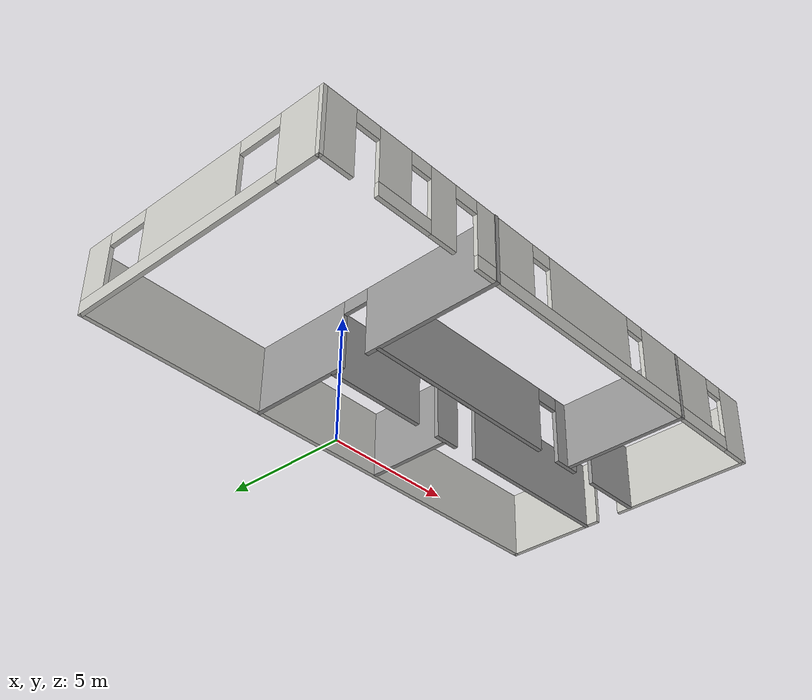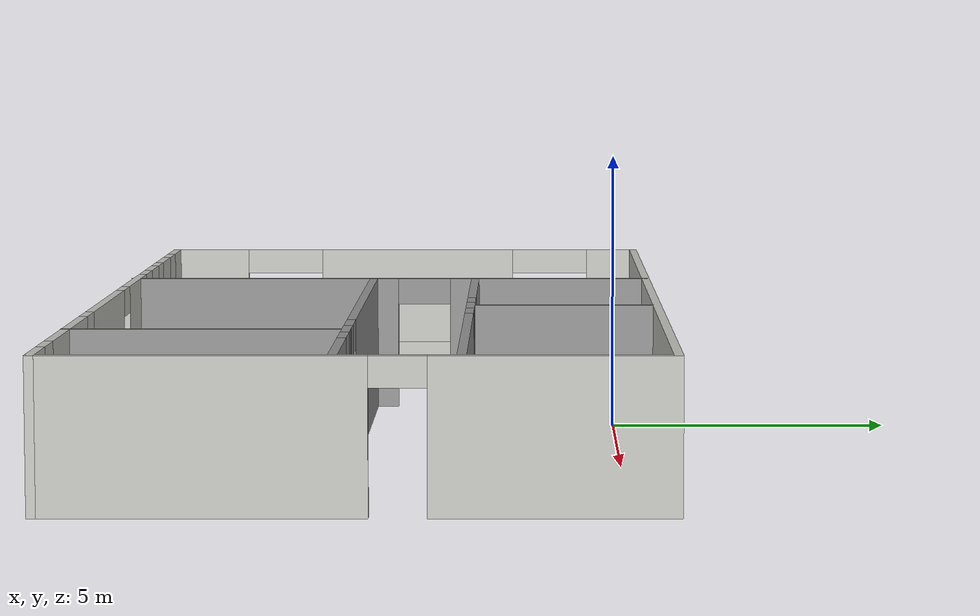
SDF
<?xml version='1.0'?>
<sdf version='1.6'>
  <model name='Building'>
    <pose frame=''>0.241677 -4.22597 0 0 -0 0</pose>
    <link name='Wall_0'>
      <pose frame=''>-9.925 0.012573 0 0 -0 1.5708</pose>
      <visual name='Wall_0_Visual_0'>
        <pose frame=''>-4.19143 0 1.25 0 -0 0</pose>
        <geometry>
          <box>
            <size>1.61715 0.15 2.5</size>
          </box>
        </geometry>
        <material>
          <script>
            <uri>file://media/materials/scripts/gazebo.material</uri>
            <name>Gazebo/CeilingTiled</name>
          </script>
          <ambient>1 1 1 1</ambient>
        </material>
        <meta>
          <layer>0</layer>
        </meta>
      </visual>
      <collision name='Wall_0_Collision_0'>
        <geometry>
          <box>
            <size>1.61715 0.15 2.5</size>
          </box>
        </geometry>
        <pose frame=''>-4.19143 0 1.25 0 -0 0</pose>
      </collision>
      <visual name='Wall_0_Visual_1'>
        <pose frame=''>0.808574 0 0.25 0 -0 0</pose>
        <geometry>
          <box>
            <size>8.38285 0.15 0.5</size>
          </box>
        </geometry>
        <material>
          <script>
            <uri>file://media/materials/scripts/gazebo.material</uri>
            <name>Gazebo/CeilingTiled</name>
          </script>
          <ambient>1 1 1 1</ambient>
        </material>
        <meta>
          <layer>0</layer>
        </meta>
      </visual>
      <collision name='Wall_0_Collision_1'>
        <geometry>
          <box>
            <size>8.38285 0.15 0.5</size>
          </box>
        </geometry>
        <pose frame=''>0.808574 0 0.25 0 -0 0</pose>
      </collision>
      <visual name='Wall_0_Visual_2'>
        <pose frame=''>0.268788 0 1.5 0 -0 0</pose>
        <geometry>
          <box>
            <size>4.10328 0.15 2</size>
          </box>
        </geometry>
        <material>
          <script>
            <uri>file://media/materials/scripts/gazebo.material</uri>
            <name>Gazebo/CeilingTiled</name>
          </script>
          <ambient>1 1 1 1</ambient>
        </material>
        <meta>
          <layer>0</layer>
        </meta>
      </visual>
      <collision name='Wall_0_Collision_2'>
        <geometry>
          <box>
            <size>4.10328 0.15 2</size>
          </box>
        </geometry>
        <pose frame=''>0.268788 0 1.5 0 -0 0</pose>
      </collision>
      <visual name='Wall_0_Visual_3'>
        <pose frame=''>4.46021 0 1.5 0 -0 0</pose>
        <geometry>
          <box>
            <size>1.07957 0.15 2</size>
          </box>
        </geometry>
        <material>
          <script>
            <uri>file://media/materials/scripts/gazebo.material</uri>
            <name>Gazebo/CeilingTiled</name>
          </script>
          <ambient>1 1 1 1</ambient>
        </material>
        <meta>
          <layer>0</layer>
        </meta>
      </visual>
      <collision name='Wall_0_Collision_3'>
        <geometry>
          <box>
            <size>1.07957 0.15 2</size>
          </box>
        </geometry>
        <pose frame=''>4.46021 0 1.5 0 -0 0</pose>
      </collision>
      <visual name='Wall_0_Visual_4'>
        <pose frame=''>-2.58285 0 2.25 0 -0 0</pose>
        <geometry>
          <box>
            <size>1.6 0.15 0.5</size>
          </box>
        </geometry>
        <material>
          <script>
            <uri>file://media/materials/scripts/gazebo.material</uri>
            <name>Gazebo/CeilingTiled</name>
          </script>
          <ambient>1 1 1 1</ambient>
        </material>
        <meta>
          <layer>0</layer>
        </meta>
      </visual>
      <collision name='Wall_0_Collision_4'>
        <geometry>
          <box>
            <size>1.6 0.15 0.5</size>
          </box>
        </geometry>
        <pose frame=''>-2.58285 0 2.25 0 -0 0</pose>
      </collision>
      <visual name='Wall_0_Visual_5'>
        <pose frame=''>3.12043 0 2.25 0 -0 0</pose>
        <geometry>
          <box>
            <size>1.6 0.15 0.5</size>
          </box>
        </geometry>
        <material>
          <script>
            <uri>file://media/materials/scripts/gazebo.material</uri>
            <name>Gazebo/CeilingTiled</name>
          </script>
          <ambient>1 1 1 1</ambient>
        </material>
        <meta>
          <layer>0</layer>
        </meta>
      </visual>
      <collision name='Wall_0_Collision_5'>
        <geometry>
          <box>
            <size>1.6 0.15 0.5</size>
          </box>
        </geometry>
        <pose frame=''>3.12043 0 2.25 0 -0 0</pose>
      </collision>
    </link>
    <link name='Wall_1'>
      <collision name='Wall_1_Collision'>
        <geometry>
          <box>
            <size>20 0.15 2.5</size>
          </box>
        </geometry>
        <pose frame=''>0 0 1.25 0 -0 0</pose>
      </collision>
      <visual name='Wall_1_Visual'>
        <pose frame=''>0 0 1.25 0 -0 0</pose>
        <geometry>
          <box>
            <size>20 0.15 2.5</size>
          </box>
        </geometry>
        <material>
          <script>
            <uri>file://media/materials/scripts/gazebo.material</uri>
            <name>Gazebo/CeilingTiled</name>
          </script>
          <ambient>1 1 1 1</ambient>
        </material>
        <meta>
          <layer>0</layer>
        </meta>
      </visual>
      <pose frame=''>0 4.93757 0 0 -0 0</pose>
    </link>
    <link name='Wall_11'>
      <collision name='Wall_11_Collision'>
        <geometry>
          <box>
            <size>3.25 0.15 2.5</size>
          </box>
        </geometry>
        <pose frame=''>0 0 1.25 0 -0 0</pose>
      </collision>
      <visual name='Wall_11_Visual'>
        <pose frame=''>0 0 1.25 0 -0 0</pose>
        <geometry>
          <box>
            <size>3.25 0.15 2.5</size>
          </box>
        </geometry>
        <material>
          <script>
            <uri>file://media/materials/scripts/gazebo.material</uri>
            <name>Gazebo/Grey</name>
          </script>
          <ambient>1 1 1 1</ambient>
        </material>
        <meta>
          <layer>0</layer>
        </meta>
      </visual>
      <pose frame=''>2.242 3.25338 0 0 -0 1.5708</pose>
    </link>
    <link name='Wall_13'>
      <collision name='Wall_13_Collision'>
        <geometry>
          <box>
            <size>4.75 0.15 2.5</size>
          </box>
        </geometry>
        <pose frame=''>0 0 1.25 0 -0 0</pose>
      </collision>
      <visual name='Wall_13_Visual'>
        <pose frame=''>0 0 1.25 0 -0 0</pose>
        <geometry>
          <box>
            <size>4.75 0.15 2.5</size>
          </box>
        </geometry>
        <material>
          <script>
            <uri>file://media/materials/scripts/gazebo.material</uri>
            <name>Gazebo/Grey</name>
          </script>
          <ambient>1 1 1 1</ambient>
        </material>
        <meta>
          <layer>0</layer>
        </meta>
      </visual>
      <pose frame=''>6.2419 -2.61938 0 0 0 -1.5708</pose>
    </link>
    <link name='Wall_2'>
      <pose frame=''>9.925 0.012573 0 0 0 -1.5708</pose>
      <visual name='Wall_2_Visual_0'>
        <pose frame=''>-3.05331 0 1.25 0 -0 0</pose>
        <geometry>
          <box>
            <size>3.89339 0.15 2.5</size>
          </box>
        </geometry>
        <material>
          <script>
            <uri>file://media/materials/scripts/gazebo.material</uri>
            <name>Gazebo/CeilingTiled</name>
          </script>
          <ambient>1 1 1 1</ambient>
        </material>
        <meta>
          <layer>0</layer>
        </meta>
      </visual>
      <collision name='Wall_2_Collision_0'>
        <geometry>
          <box>
            <size>3.89339 0.15 2.5</size>
          </box>
        </geometry>
        <pose frame=''>-3.05331 0 1.25 0 -0 0</pose>
      </collision>
      <visual name='Wall_2_Visual_1'>
        <pose frame=''>2.39669 0 1.25 0 -0 0</pose>
        <geometry>
          <box>
            <size>5.20661 0.15 2.5</size>
          </box>
        </geometry>
        <material>
          <script>
            <uri>file://media/materials/scripts/gazebo.material</uri>
            <name>Gazebo/CeilingTiled</name>
          </script>
          <ambient>1 1 1 1</ambient>
        </material>
        <meta>
          <layer>0</layer>
        </meta>
      </visual>
      <collision name='Wall_2_Collision_1'>
        <geometry>
          <box>
            <size>5.20661 0.15 2.5</size>
          </box>
        </geometry>
        <pose frame=''>2.39669 0 1.25 0 -0 0</pose>
      </collision>
      <visual name='Wall_2_Visual_2'>
        <pose frame=''>-0.656611 0 2.25 0 -0 0</pose>
        <geometry>
          <box>
            <size>0.9 0.15 0.5</size>
          </box>
        </geometry>
        <material>
          <script>
            <uri>file://media/materials/scripts/gazebo.material</uri>
            <name>Gazebo/CeilingTiled</name>
          </script>
          <ambient>1 1 1 1</ambient>
        </material>
        <meta>
          <layer>0</layer>
        </meta>
      </visual>
      <collision name='Wall_2_Collision_2'>
        <geometry>
          <box>
            <size>0.9 0.15 0.5</size>
          </box>
        </geometry>
        <pose frame=''>-0.656611 0 2.25 0 -0 0</pose>
      </collision>
    </link>
    <link name='Wall_3'>
      <pose frame=''>0 -4.91243 0 0 -0 3.14159</pose>
      <visual name='Wall_3_Visual_0'>
        <pose frame=''>-9.42358 0 1.25 0 -0 0</pose>
        <geometry>
          <box>
            <size>1.15283 0.15 2.5</size>
          </box>
        </geometry>
        <material>
          <script>
            <uri>file://media/materials/scripts/gazebo.material</uri>
            <name>Gazebo/CeilingTiled</name>
          </script>
          <ambient>1 1 1 1</ambient>
        </material>
        <meta>
          <layer>0</layer>
        </meta>
      </visual>
      <collision name='Wall_3_Collision_0'>
        <geometry>
          <box>
            <size>1.15283 0.15 2.5</size>
          </box>
        </geometry>
        <pose frame=''>-9.42358 0 1.25 0 -0 0</pose>
      </collision>
      <visual name='Wall_3_Visual_1'>
        <pose frame=''>5.29612 0 1.25 0 -0 0</pose>
        <geometry>
          <box>
            <size>1.03588 0.15 2.5</size>
          </box>
        </geometry>
        <material>
          <script>
            <uri>file://media/materials/scripts/gazebo.material</uri>
            <name>Gazebo/CeilingTiled</name>
          </script>
          <ambient>1 1 1 1</ambient>
        </material>
        <meta>
          <layer>0</layer>
        </meta>
      </visual>
      <collision name='Wall_3_Collision_1'>
        <geometry>
          <box>
            <size>1.03588 0.15 2.5</size>
          </box>
        </geometry>
        <pose frame=''>5.29612 0 1.25 0 -0 0</pose>
      </collision>
      <visual name='Wall_3_Visual_2'>
        <pose frame=''>9.38144 0 1.25 0 -0 0</pose>
        <geometry>
          <box>
            <size>1.23713 0.15 2.5</size>
          </box>
        </geometry>
        <material>
          <script>
            <uri>file://media/materials/scripts/gazebo.material</uri>
            <name>Gazebo/CeilingTiled</name>
          </script>
          <ambient>1 1 1 1</ambient>
        </material>
        <meta>
          <layer>0</layer>
        </meta>
      </visual>
      <collision name='Wall_3_Collision_2'>
        <geometry>
          <box>
            <size>1.23713 0.15 2.5</size>
          </box>
        </geometry>
        <pose frame=''>9.38144 0 1.25 0 -0 0</pose>
      </collision>
      <visual name='Wall_3_Visual_3'>
        <pose frame=''>-2.48449 0 0.25 0 -0 0</pose>
        <geometry>
          <box>
            <size>12.7254 0.15 0.5</size>
          </box>
        </geometry>
        <material>
          <script>
            <uri>file://media/materials/scripts/gazebo.material</uri>
            <name>Gazebo/CeilingTiled</name>
          </script>
          <ambient>1 1 1 1</ambient>
        </material>
        <meta>
          <layer>0</layer>
        </meta>
      </visual>
      <collision name='Wall_3_Collision_3'>
        <geometry>
          <box>
            <size>12.7254 0.15 0.5</size>
          </box>
        </geometry>
        <pose frame=''>-2.48449 0 0.25 0 -0 0</pose>
      </collision>
      <visual name='Wall_3_Visual_4'>
        <pose frame=''>6.83847 0 0.25 0 -0 0</pose>
        <geometry>
          <box>
            <size>2.04881 0.15 0.5</size>
          </box>
        </geometry>
        <material>
          <script>
            <uri>file://media/materials/scripts/gazebo.material</uri>
            <name>Gazebo/CeilingTiled</name>
          </script>
          <ambient>1 1 1 1</ambient>
        </material>
        <meta>
          <layer>0</layer>
        </meta>
      </visual>
      <collision name='Wall_3_Collision_4'>
        <geometry>
          <box>
            <size>2.04881 0.15 0.5</size>
          </box>
        </geometry>
        <pose frame=''>6.83847 0 0.25 0 -0 0</pose>
      </collision>
      <visual name='Wall_3_Visual_5'>
        <pose frame=''>-6.15065 0 1.5 0 -0 0</pose>
        <geometry>
          <box>
            <size>3.79304 0.15 2</size>
          </box>
        </geometry>
        <material>
          <script>
            <uri>file://media/materials/scripts/gazebo.material</uri>
            <name>Gazebo/CeilingTiled</name>
          </script>
          <ambient>1 1 1 1</ambient>
        </material>
        <meta>
          <layer>0</layer>
        </meta>
      </visual>
      <collision name='Wall_3_Collision_5'>
        <geometry>
          <box>
            <size>3.79304 0.15 2</size>
          </box>
        </geometry>
        <pose frame=''>-6.15065 0 1.5 0 -0 0</pose>
      </collision>
      <visual name='Wall_3_Visual_6'>
        <pose frame=''>-1.46635 0 1.5 0 -0 0</pose>
        <geometry>
          <box>
            <size>3.97555 0.15 2</size>
          </box>
        </geometry>
        <material>
          <script>
            <uri>file://media/materials/scripts/gazebo.material</uri>
            <name>Gazebo/CeilingTiled</name>
          </script>
          <ambient>1 1 1 1</ambient>
        </material>
        <meta>
          <layer>0</layer>
        </meta>
      </visual>
      <collision name='Wall_3_Collision_6'>
        <geometry>
          <box>
            <size>3.97555 0.15 2</size>
          </box>
        </geometry>
        <pose frame=''>-1.46635 0 1.5 0 -0 0</pose>
      </collision>
      <visual name='Wall_3_Visual_7'>
        <pose frame=''>2.5998 0 1.5 0 -0 0</pose>
        <geometry>
          <box>
            <size>2.55676 0.15 2</size>
          </box>
        </geometry>
        <material>
          <script>
            <uri>file://media/materials/scripts/gazebo.material</uri>
            <name>Gazebo/CeilingTiled</name>
          </script>
          <ambient>1 1 1 1</ambient>
        </material>
        <meta>
          <layer>0</layer>
        </meta>
      </visual>
      <collision name='Wall_3_Collision_7'>
        <geometry>
          <box>
            <size>2.55676 0.15 2</size>
          </box>
        </geometry>
        <pose frame=''>2.5998 0 1.5 0 -0 0</pose>
      </collision>
      <visual name='Wall_3_Visual_8'>
        <pose frame=''>2.5998 0 1.5 0 -0 0</pose>
        <geometry>
          <box>
            <size>2.55676 0.15 2</size>
          </box>
        </geometry>
        <material>
          <script>
            <uri>file://media/materials/scripts/gazebo.material</uri>
            <name>Gazebo/CeilingTiled</name>
          </script>
          <ambient>1 1 1 1</ambient>
        </material>
        <meta>
          <layer>0</layer>
        </meta>
      </visual>
      <collision name='Wall_3_Collision_8'>
        <geometry>
          <box>
            <size>2.55676 0.15 2</size>
          </box>
        </geometry>
        <pose frame=''>2.5998 0 1.5 0 -0 0</pose>
      </collision>
      <visual name='Wall_3_Visual_9'>
        <pose frame=''>7.23847 0 1.5 0 -0 0</pose>
        <geometry>
          <box>
            <size>1.24881 0.15 2</size>
          </box>
        </geometry>
        <material>
          <script>
            <uri>file://media/materials/scripts/gazebo.material</uri>
            <name>Gazebo/CeilingTiled</name>
          </script>
          <ambient>1 1 1 1</ambient>
        </material>
        <meta>
          <layer>0</layer>
        </meta>
      </visual>
      <collision name='Wall_3_Collision_9'>
        <geometry>
          <box>
            <size>1.24881 0.15 2</size>
          </box>
        </geometry>
        <pose frame=''>7.23847 0 1.5 0 -0 0</pose>
      </collision>
      <visual name='Wall_3_Visual_10'>
        <pose frame=''>-8.44717 0 2.25 0 -0 0</pose>
        <geometry>
          <box>
            <size>0.8 0.15 0.5</size>
          </box>
        </geometry>
        <material>
          <script>
            <uri>file://media/materials/scripts/gazebo.material</uri>
            <name>Gazebo/CeilingTiled</name>
          </script>
          <ambient>1 1 1 1</ambient>
        </material>
        <meta>
          <layer>0</layer>
        </meta>
      </visual>
      <collision name='Wall_3_Collision_10'>
        <geometry>
          <box>
            <size>0.8 0.15 0.5</size>
          </box>
        </geometry>
        <pose frame=''>-8.44717 0 2.25 0 -0 0</pose>
      </collision>
      <visual name='Wall_3_Visual_11'>
        <pose frame=''>6.21406 0 2.25 0 -0 0</pose>
        <geometry>
          <box>
            <size>0.8 0.15 0.5</size>
          </box>
        </geometry>
        <material>
          <script>
            <uri>file://media/materials/scripts/gazebo.material</uri>
            <name>Gazebo/CeilingTiled</name>
          </script>
          <ambient>1 1 1 1</ambient>
        </material>
        <meta>
          <layer>0</layer>
        </meta>
      </visual>
      <collision name='Wall_3_Collision_11'>
        <geometry>
          <box>
            <size>0.8 0.15 0.5</size>
          </box>
        </geometry>
        <pose frame=''>6.21406 0 2.25 0 -0 0</pose>
      </collision>
      <visual name='Wall_3_Visual_12'>
        <pose frame=''>-3.85413 0 2.25 0 -0 0</pose>
        <geometry>
          <box>
            <size>0.8 0.15 0.5</size>
          </box>
        </geometry>
        <material>
          <script>
            <uri>file://media/materials/scripts/gazebo.material</uri>
            <name>Gazebo/CeilingTiled</name>
          </script>
          <ambient>1 1 1 1</ambient>
        </material>
        <meta>
          <layer>0</layer>
        </meta>
      </visual>
      <collision name='Wall_3_Collision_12'>
        <geometry>
          <box>
            <size>0.8 0.15 0.5</size>
          </box>
        </geometry>
        <pose frame=''>-3.85413 0 2.25 0 -0 0</pose>
      </collision>
      <visual name='Wall_3_Visual_13'>
        <pose frame=''>0.92142 0 2.25 0 -0 0</pose>
        <geometry>
          <box>
            <size>0.8 0.15 0.5</size>
          </box>
        </geometry>
        <material>
          <script>
            <uri>file://media/materials/scripts/gazebo.material</uri>
            <name>Gazebo/CeilingTiled</name>
          </script>
          <ambient>1 1 1 1</ambient>
        </material>
        <meta>
          <layer>0</layer>
        </meta>
      </visual>
      <collision name='Wall_3_Collision_13'>
        <geometry>
          <box>
            <size>0.8 0.15 0.5</size>
          </box>
        </geometry>
        <pose frame=''>0.92142 0 2.25 0 -0 0</pose>
      </collision>
      <visual name='Wall_3_Visual_14'>
        <pose frame=''>4.32818 0 2.25 0 -0 0</pose>
        <geometry>
          <box>
            <size>0.9 0.15 0.5</size>
          </box>
        </geometry>
        <material>
          <script>
            <uri>file://media/materials/scripts/gazebo.material</uri>
            <name>Gazebo/CeilingTiled</name>
          </script>
          <ambient>1 1 1 1</ambient>
        </material>
        <meta>
          <layer>0</layer>
        </meta>
      </visual>
      <collision name='Wall_3_Collision_14'>
        <geometry>
          <box>
            <size>0.9 0.15 0.5</size>
          </box>
        </geometry>
        <pose frame=''>4.32818 0 2.25 0 -0 0</pose>
      </collision>
      <visual name='Wall_3_Visual_15'>
        <pose frame=''>4.32818 0 2.25 0 -0 0</pose>
        <geometry>
          <box>
            <size>0.9 0.15 0.5</size>
          </box>
        </geometry>
        <material>
          <script>
            <uri>file://media/materials/scripts/gazebo.material</uri>
            <name>Gazebo/CeilingTiled</name>
          </script>
          <ambient>1 1 1 1</ambient>
        </material>
        <meta>
          <layer>0</layer>
        </meta>
      </visual>
      <collision name='Wall_3_Collision_15'>
        <geometry>
          <box>
            <size>0.9 0.15 0.5</size>
          </box>
        </geometry>
        <pose frame=''>4.32818 0 2.25 0 -0 0</pose>
      </collision>
      <visual name='Wall_3_Visual_16'>
        <pose frame=''>8.31287 0 2.25 0 -0 0</pose>
        <geometry>
          <box>
            <size>0.9 0.15 0.5</size>
          </box>
        </geometry>
        <material>
          <script>
            <uri>file://media/materials/scripts/gazebo.material</uri>
            <name>Gazebo/CeilingTiled</name>
          </script>
          <ambient>1 1 1 1</ambient>
        </material>
        <meta>
          <layer>0</layer>
        </meta>
      </visual>
      <collision name='Wall_3_Collision_16'>
        <geometry>
          <box>
            <size>0.9 0.15 0.5</size>
          </box>
        </geometry>
        <pose frame=''>8.31287 0 2.25 0 -0 0</pose>
      </collision>
    </link>
    <link name='Wall_5'>
      <pose frame=''>-3.02023 -0.012574 0 0 0 -1.5708</pose>
      <visual name='Wall_5_Visual_0'>
        <pose frame=''>-3.08327 0 1.25 0 -0 0</pose>
        <geometry>
          <box>
            <size>3.83345 0.15 2.5</size>
          </box>
        </geometry>
        <material>
          <script>
            <uri>file://media/materials/scripts/gazebo.material</uri>
            <name>Gazebo/Grey</name>
          </script>
          <ambient>1 1 1 1</ambient>
        </material>
        <meta>
          <layer>0</layer>
        </meta>
      </visual>
      <collision name='Wall_5_Collision_0'>
        <geometry>
          <box>
            <size>3.83345 0.15 2.5</size>
          </box>
        </geometry>
        <pose frame=''>-3.08327 0 1.25 0 -0 0</pose>
      </collision>
      <visual name='Wall_5_Visual_1'>
        <pose frame=''>2.41673 0 1.25 0 -0 0</pose>
        <geometry>
          <box>
            <size>5.16655 0.15 2.5</size>
          </box>
        </geometry>
        <material>
          <script>
            <uri>file://media/materials/scripts/gazebo.material</uri>
            <name>Gazebo/Grey</name>
          </script>
          <ambient>1 1 1 1</ambient>
        </material>
        <meta>
          <layer>0</layer>
        </meta>
      </visual>
      <collision name='Wall_5_Collision_1'>
        <geometry>
          <box>
            <size>5.16655 0.15 2.5</size>
          </box>
        </geometry>
        <pose frame=''>2.41673 0 1.25 0 -0 0</pose>
      </collision>
      <visual name='Wall_5_Visual_2'>
        <pose frame=''>-0.66655 0 2.25 0 -0 0</pose>
        <geometry>
          <box>
            <size>1 0.15 0.5</size>
          </box>
        </geometry>
        <material>
          <script>
            <uri>file://media/materials/scripts/gazebo.material</uri>
            <name>Gazebo/Grey</name>
          </script>
          <ambient>1 1 1 1</ambient>
        </material>
        <meta>
          <layer>0</layer>
        </meta>
      </visual>
      <collision name='Wall_5_Collision_2'>
        <geometry>
          <box>
            <size>1 0.15 0.5</size>
          </box>
        </geometry>
        <pose frame=''>-0.66655 0 2.25 0 -0 0</pose>
      </collision>
    </link>
    <link name='Wall_7'>
      <pose frame=''>3.48082 1.64254 0 0 -0 0</pose>
      <visual name='Wall_7_Visual_0'>
        <pose frame=''>-4.55828 0 1.25 0 -0 0</pose>
        <geometry>
          <box>
            <size>3.88345 0.15 2.5</size>
          </box>
        </geometry>
        <material>
          <script>
            <uri>file://media/materials/scripts/gazebo.material</uri>
            <name>Gazebo/Grey</name>
          </script>
          <ambient>1 1 1 1</ambient>
        </material>
        <meta>
          <layer>0</layer>
        </meta>
      </visual>
      <collision name='Wall_7_Collision_0'>
        <geometry>
          <box>
            <size>3.88345 0.15 2.5</size>
          </box>
        </geometry>
        <pose frame=''>-4.55828 0 1.25 0 -0 0</pose>
      </collision>
      <visual name='Wall_7_Visual_1'>
        <pose frame=''>-1.22361 0 1.25 0 -0 0</pose>
        <geometry>
          <box>
            <size>0.985885 0.15 2.5</size>
          </box>
        </geometry>
        <material>
          <script>
            <uri>file://media/materials/scripts/gazebo.material</uri>
            <name>Gazebo/Grey</name>
          </script>
          <ambient>1 1 1 1</ambient>
        </material>
        <meta>
          <layer>0</layer>
        </meta>
      </visual>
      <collision name='Wall_7_Collision_1'>
        <geometry>
          <box>
            <size>0.985885 0.15 2.5</size>
          </box>
        </geometry>
        <pose frame=''>-1.22361 0 1.25 0 -0 0</pose>
      </collision>
      <visual name='Wall_7_Visual_2'>
        <pose frame=''>3.33467 0 1.25 0 -0 0</pose>
        <geometry>
          <box>
            <size>6.33066 0.15 2.5</size>
          </box>
        </geometry>
        <material>
          <script>
            <uri>file://media/materials/scripts/gazebo.material</uri>
            <name>Gazebo/Grey</name>
          </script>
          <ambient>1 1 1 1</ambient>
        </material>
        <meta>
          <layer>0</layer>
        </meta>
      </visual>
      <collision name='Wall_7_Collision_2'>
        <geometry>
          <box>
            <size>6.33066 0.15 2.5</size>
          </box>
        </geometry>
        <pose frame=''>3.33467 0 1.25 0 -0 0</pose>
      </collision>
      <visual name='Wall_7_Visual_3'>
        <pose frame=''>-2.16655 0 2.25 0 -0 0</pose>
        <geometry>
          <box>
            <size>0.9 0.15 0.5</size>
          </box>
        </geometry>
        <material>
          <script>
            <uri>file://media/materials/scripts/gazebo.material</uri>
            <name>Gazebo/Grey</name>
          </script>
          <ambient>1 1 1 1</ambient>
        </material>
        <meta>
          <layer>0</layer>
        </meta>
      </visual>
      <collision name='Wall_7_Collision_3'>
        <geometry>
          <box>
            <size>0.9 0.15 0.5</size>
          </box>
        </geometry>
        <pose frame=''>-2.16655 0 2.25 0 -0 0</pose>
      </collision>
      <visual name='Wall_7_Visual_4'>
        <pose frame=''>-0.280665 0 2.25 0 -0 0</pose>
        <geometry>
          <box>
            <size>0.9 0.15 0.5</size>
          </box>
        </geometry>
        <material>
          <script>
            <uri>file://media/materials/scripts/gazebo.material</uri>
            <name>Gazebo/Grey</name>
          </script>
          <ambient>1 1 1 1</ambient>
        </material>
        <meta>
          <layer>0</layer>
        </meta>
      </visual>
      <collision name='Wall_7_Collision_4'>
        <geometry>
          <box>
            <size>0.9 0.15 0.5</size>
          </box>
        </geometry>
        <pose frame=''>-0.280665 0 2.25 0 -0 0</pose>
      </collision>
    </link>
    <link name='Wall_9'>
      <pose frame=''>3.467 -0.319384 0 0 -0 3.14159</pose>
      <visual name='Wall_9_Visual_0'>
        <pose frame=''>-5.2959 0 1.25 0 -0 0</pose>
        <geometry>
          <box>
            <size>2.4082 0.15 2.5</size>
          </box>
        </geometry>
        <material>
          <script>
            <uri>file://media/materials/scripts/gazebo.material</uri>
            <name>Gazebo/Grey</name>
          </script>
          <ambient>1 1 1 1</ambient>
        </material>
        <meta>
          <layer>0</layer>
        </meta>
      </visual>
      <collision name='Wall_9_Collision_0'>
        <geometry>
          <box>
            <size>2.4082 0.15 2.5</size>
          </box>
        </geometry>
        <pose frame=''>-5.2959 0 1.25 0 -0 0</pose>
      </collision>
      <visual name='Wall_9_Visual_1'>
        <pose frame=''>-2.68365 0 1.25 0 -0 0</pose>
        <geometry>
          <box>
            <size>1.0163 0.15 2.5</size>
          </box>
        </geometry>
        <material>
          <script>
            <uri>file://media/materials/scripts/gazebo.material</uri>
            <name>Gazebo/Grey</name>
          </script>
          <ambient>1 1 1 1</ambient>
        </material>
        <meta>
          <layer>0</layer>
        </meta>
      </visual>
      <collision name='Wall_9_Collision_1'>
        <geometry>
          <box>
            <size>1.0163 0.15 2.5</size>
          </box>
        </geometry>
        <pose frame=''>-2.68365 0 1.25 0 -0 0</pose>
      </collision>
      <visual name='Wall_9_Visual_2'>
        <pose frame=''>2.61225 0 1.25 0 -0 0</pose>
        <geometry>
          <box>
            <size>7.7755 0.15 2.5</size>
          </box>
        </geometry>
        <material>
          <script>
            <uri>file://media/materials/scripts/gazebo.material</uri>
            <name>Gazebo/Grey</name>
          </script>
          <ambient>1 1 1 1</ambient>
        </material>
        <meta>
          <layer>0</layer>
        </meta>
      </visual>
      <collision name='Wall_9_Collision_2'>
        <geometry>
          <box>
            <size>7.7755 0.15 2.5</size>
          </box>
        </geometry>
        <pose frame=''>2.61225 0 1.25 0 -0 0</pose>
      </collision>
      <visual name='Wall_9_Visual_3'>
        <pose frame=''>-3.6418 0 2.25 0 -0 0</pose>
        <geometry>
          <box>
            <size>0.9 0.15 0.5</size>
          </box>
        </geometry>
        <material>
          <script>
            <uri>file://media/materials/scripts/gazebo.material</uri>
            <name>Gazebo/Grey</name>
          </script>
          <ambient>1 1 1 1</ambient>
        </material>
        <meta>
          <layer>0</layer>
        </meta>
      </visual>
      <collision name='Wall_9_Collision_3'>
        <geometry>
          <box>
            <size>0.9 0.15 0.5</size>
          </box>
        </geometry>
        <pose frame=''>-3.6418 0 2.25 0 -0 0</pose>
      </collision>
      <visual name='Wall_9_Visual_4'>
        <pose frame=''>-1.7255 0 2.25 0 -0 0</pose>
        <geometry>
          <box>
            <size>0.9 0.15 0.5</size>
          </box>
        </geometry>
        <material>
          <script>
            <uri>file://media/materials/scripts/gazebo.material</uri>
            <name>Gazebo/Grey</name>
          </script>
          <ambient>1 1 1 1</ambient>
        </material>
        <meta>
          <layer>0</layer>
        </meta>
      </visual>
      <collision name='Wall_9_Collision_4'>
        <geometry>
          <box>
            <size>0.9 0.15 0.5</size>
          </box>
        </geometry>
        <pose frame=''>-1.7255 0 2.25 0 -0 0</pose>
      </collision>
    </link>
    <static>1</static>
  </model>
</sdf>
